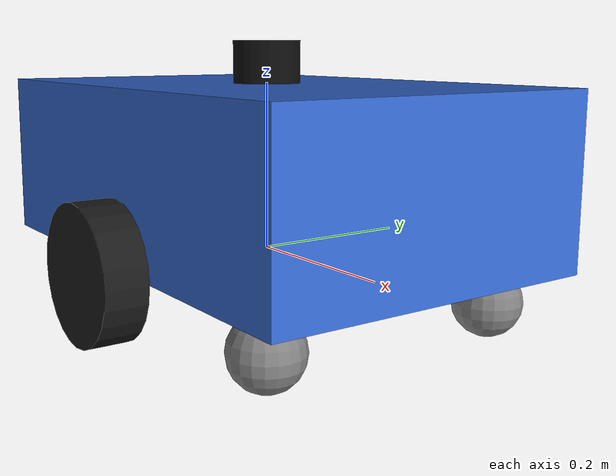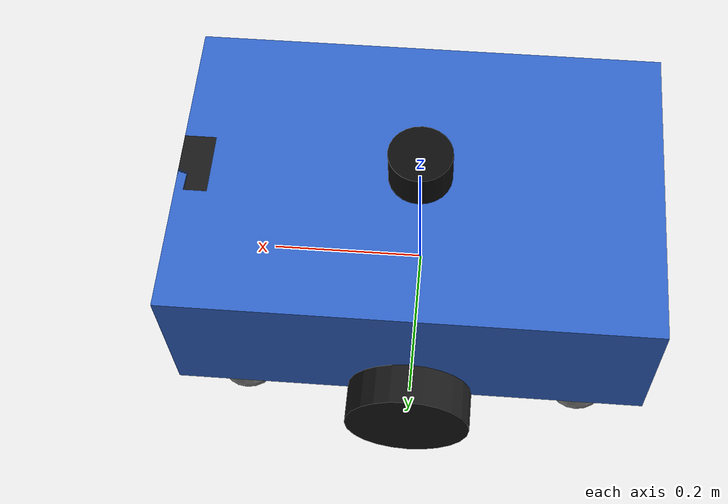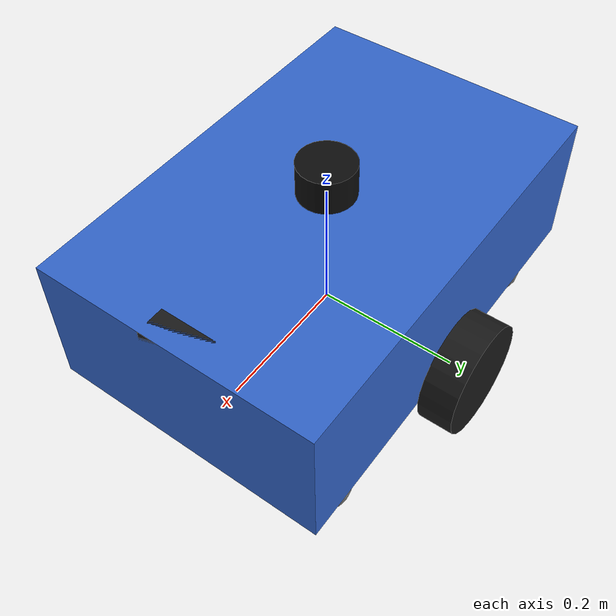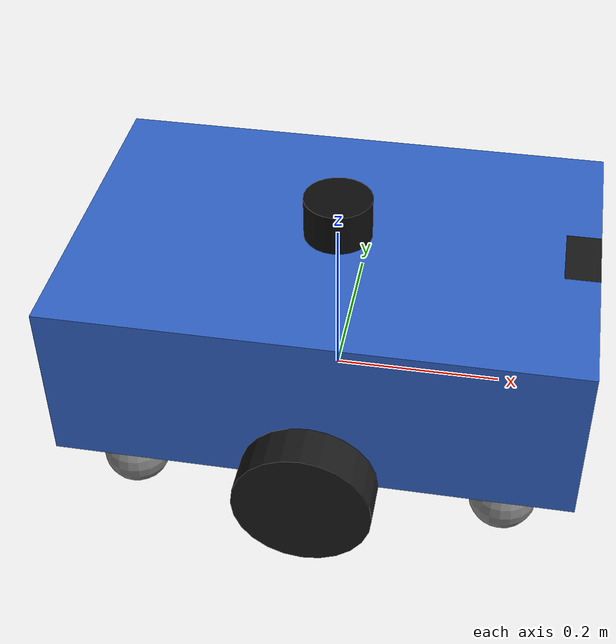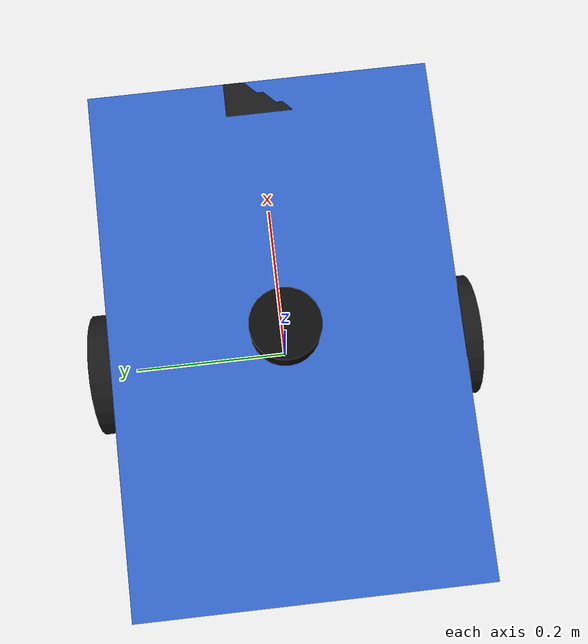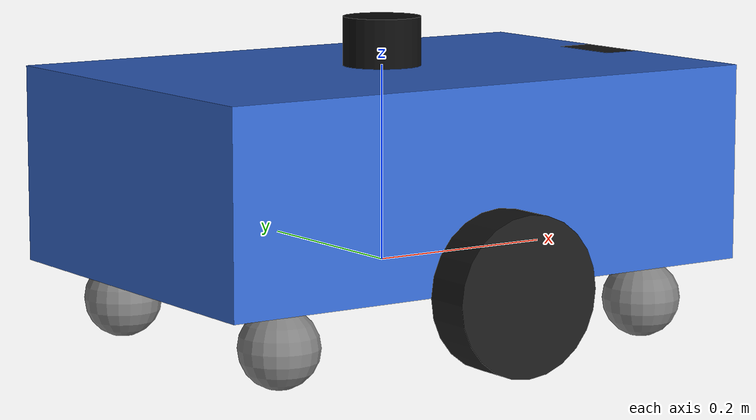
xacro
<?xml version="1.0"?>
<robot name="agv_robot" xmlns:xacro="http://www.ros.org/wiki/xacro">

  <!-- ==================== PROPERTIES ==================== -->
  <xacro:arg name="robot_name" default="robot_1"/>
  <xacro:arg name="robot_namespace" default="robot_1"/>

  <xacro:property name="robot_name"      value="$(arg robot_name)"/>
  <xacro:property name="ns"             value="$(arg robot_namespace)"/>

  <!-- Body dimensions -->
  <xacro:property name="base_length"    value="0.60"/>
  <xacro:property name="base_width"     value="0.40"/>
  <xacro:property name="base_height"    value="0.20"/>
  <xacro:property name="base_mass"      value="30.0"/>

  <!-- Wheel properties -->
  <xacro:property name="wheel_radius"   value="0.08"/>
  <xacro:property name="wheel_width"    value="0.05"/>
  <xacro:property name="wheel_mass"     value="1.5"/>
  <xacro:property name="wheel_y_offset" value="0.225"/>
  <xacro:property name="wheel_z_offset" value="0.0"/>

  <!-- Caster properties -->
  <xacro:property name="caster_radius"  value="0.04"/>
  <xacro:property name="caster_mass"    value="0.5"/>

  <!-- Sensor heights -->
  <xacro:property name="lidar_height"   value="0.22"/>
  <xacro:property name="camera_height"  value="0.18"/>
  <xacro:property name="imu_height"     value="0.12"/>

  <!-- Inertia macros -->
  <xacro:macro name="box_inertia" params="m x y z">
    <inertial>
      <mass value="${m}"/>
      <inertia ixx="${m*(y*y+z*z)/12}" ixy="0" ixz="0"
               iyy="${m*(x*x+z*z)/12}" iyz="0"
               izz="${m*(x*x+y*y)/12}"/>
    </inertial>
  </xacro:macro>

  <xacro:macro name="cylinder_inertia" params="m r h">
    <inertial>
      <mass value="${m}"/>
      <inertia ixx="${m*(3*r*r+h*h)/12}" ixy="0" ixz="0"
               iyy="${m*(3*r*r+h*h)/12}" iyz="0"
               izz="${m*r*r/2}"/>
    </inertial>
  </xacro:macro>

  <xacro:macro name="sphere_inertia" params="m r">
    <inertial>
      <mass value="${m}"/>
      <inertia ixx="${2*m*r*r/5}" ixy="0" ixz="0"
               iyy="${2*m*r*r/5}" iyz="0"
               izz="${2*m*r*r/5}"/>
    </inertial>
  </xacro:macro>

  <!-- ==================== BASE LINK ==================== -->
  <link name="${ns}/base_footprint"/>

  <joint name="${ns}/base_footprint_joint" type="fixed">
    <parent link="${ns}/base_link"/>
    <child  link="${ns}/base_footprint"/>
    <origin xyz="0 0 ${-wheel_radius}" rpy="0 0 0"/>
  </joint>

  <link name="${ns}/base_link">
    <visual>
      <origin xyz="0 0 ${base_height/2}" rpy="0 0 0"/>
      <geometry>
        <box size="${base_length} ${base_width} ${base_height}"/>
      </geometry>
      <material name="agv_blue">
        <color rgba="0.2 0.4 0.8 1.0"/>
      </material>
    </visual>
    <collision>
      <origin xyz="0 0 ${base_height/2}" rpy="0 0 0"/>
      <geometry>
        <box size="${base_length} ${base_width} ${base_height}"/>
      </geometry>
    </collision>
    <xacro:box_inertia m="${base_mass}" x="${base_length}" y="${base_width}" z="${base_height}"/>
  </link>

  <!-- ==================== DRIVE WHEELS ==================== -->
  <xacro:macro name="drive_wheel" params="prefix y_reflect">
    <link name="${ns}/${prefix}_wheel_link">
      <visual>
        <origin xyz="0 0 0" rpy="${pi/2} 0 0"/>
        <geometry>
          <cylinder radius="${wheel_radius}" length="${wheel_width}"/>
        </geometry>
        <material name="wheel_black">
          <color rgba="0.1 0.1 0.1 1.0"/>
        </material>
      </visual>
      <collision>
        <origin xyz="0 0 0" rpy="${pi/2} 0 0"/>
        <geometry>
          <cylinder radius="${wheel_radius}" length="${wheel_width}"/>
        </geometry>
      </collision>
      <xacro:cylinder_inertia m="${wheel_mass}" r="${wheel_radius}" h="${wheel_width}"/>
    </link>

    <joint name="${ns}/${prefix}_wheel_joint" type="continuous">
      <parent link="${ns}/base_link"/>
      <child  link="${ns}/${prefix}_wheel_link"/>
      <origin xyz="0 ${y_reflect * wheel_y_offset} ${wheel_z_offset}" rpy="0 0 0"/>
      <axis xyz="0 1 0"/>
      <dynamics damping="0.1" friction="0.1"/>
    </joint>
  </xacro:macro>

  <xacro:drive_wheel prefix="left"  y_reflect="1"/>
  <xacro:drive_wheel prefix="right" y_reflect="-1"/>

  <!-- ==================== CASTER WHEELS ==================== -->
  <xacro:macro name="caster_wheel" params="prefix x_pos y_pos">
    <!-- Swivel link -->
    <link name="${ns}/${prefix}_caster_swivel">
      <xacro:sphere_inertia m="0.01" r="0.01"/>
    </link>
    <joint name="${ns}/${prefix}_caster_swivel_joint" type="continuous">
      <parent link="${ns}/base_link"/>
      <child  link="${ns}/${prefix}_caster_swivel"/>
      <origin xyz="${x_pos} ${y_pos} ${-wheel_radius + caster_radius}" rpy="0 0 0"/>
      <axis xyz="0 0 1"/>
      <dynamics damping="0.01" friction="0.0"/>
    </joint>

    <!-- Caster wheel -->
    <link name="${ns}/${prefix}_caster_link">
      <visual>
        <geometry><sphere radius="${caster_radius}"/></geometry>
        <material name="caster_gray">
          <color rgba="0.5 0.5 0.5 1.0"/>
        </material>
      </visual>
      <collision>
        <geometry><sphere radius="${caster_radius}"/></geometry>
      </collision>
      <xacro:sphere_inertia m="${caster_mass}" r="${caster_radius}"/>
    </link>
    <joint name="${ns}/${prefix}_caster_joint" type="continuous">
      <parent link="${ns}/${prefix}_caster_swivel"/>
      <child  link="${ns}/${prefix}_caster_link"/>
      <origin xyz="0 0 0" rpy="0 0 0"/>
      <axis xyz="0 1 0"/>
      <dynamics damping="0.01" friction="0.0"/>
    </joint>
  </xacro:macro>

  <xacro:caster_wheel prefix="front_left"  x_pos=" 0.22" y_pos=" 0.15"/>
  <xacro:caster_wheel prefix="front_right" x_pos=" 0.22" y_pos="-0.15"/>
  <xacro:caster_wheel prefix="rear_left"   x_pos="-0.22" y_pos=" 0.15"/>
  <xacro:caster_wheel prefix="rear_right"  x_pos="-0.22" y_pos="-0.15"/>

  <!-- ==================== 2D LIDAR ==================== -->
  <link name="${ns}/lidar_link">
    <visual>
      <origin xyz="0 0 0" rpy="0 0 0"/>
      <geometry>
        <cylinder radius="0.04" length="0.06"/>
      </geometry>
      <material name="lidar_black">
        <color rgba="0.05 0.05 0.05 1.0"/>
      </material>
    </visual>
    <collision>
      <geometry>
        <cylinder radius="0.04" length="0.06"/>
      </geometry>
    </collision>
    <inertial>
      <mass value="0.3"/>
      <inertia ixx="0.001" ixy="0" ixz="0" iyy="0.001" iyz="0" izz="0.001"/>
    </inertial>
  </link>

  <joint name="${ns}/lidar_joint" type="fixed">
    <parent link="${ns}/base_link"/>
    <child  link="${ns}/lidar_link"/>
    <origin xyz="0 0 ${lidar_height}" rpy="0 0 0"/>
  </joint>

  <!-- LiDAR Gazebo plugin -->
  <gazebo reference="${ns}/lidar_link">
    <sensor name="${ns}_lidar" type="ray">
      <always_on>true</always_on>
      <visualize>false</visualize>
      <update_rate>10</update_rate>
      <ray>
        <scan>
          <horizontal>
            <samples>360</samples>
            <resolution>1</resolution>
            <min_angle>-3.14159</min_angle>
            <max_angle>3.14159</max_angle>
          </horizontal>
        </scan>
        <range>
          <min>0.15</min>
          <max>12.0</max>
          <resolution>0.01</resolution>
        </range>
        <noise>
          <type>gaussian</type>
          <mean>0.0</mean>
          <stddev>0.01</stddev>
        </noise>
      </ray>
      <plugin name="${ns}_lidar_plugin" filename="libgazebo_ros_ray_sensor.so">
        <ros>
          <namespace>${ns}</namespace>
          <remapping>~/out:=scan</remapping>
        </ros>
        <output_type>sensor_msgs/LaserScan</output_type>
        <frame_name>${ns}/lidar_link</frame_name>
      </plugin>
    </sensor>
  </gazebo>

  <!-- ==================== RGB CAMERA ==================== -->
  <link name="${ns}/camera_link">
    <visual>
      <origin xyz="0 0 0" rpy="0 0 0"/>
      <geometry>
        <box size="0.04 0.08 0.04"/>
      </geometry>
      <material name="camera_dark">
        <color rgba="0.1 0.1 0.1 1.0"/>
      </material>
    </visual>
    <collision>
      <geometry>
        <box size="0.04 0.08 0.04"/>
      </geometry>
    </collision>
    <inertial>
      <mass value="0.1"/>
      <inertia ixx="0.0001" ixy="0" ixz="0" iyy="0.0001" iyz="0" izz="0.0001"/>
    </inertial>
  </link>

  <joint name="${ns}/camera_joint" type="fixed">
    <parent link="${ns}/base_link"/>
    <child  link="${ns}/camera_link"/>
    <origin xyz="${base_length/2 - 0.02} 0 ${camera_height}" rpy="0 0 0"/>
  </joint>

  <link name="${ns}/camera_optical_link"/>
  <joint name="${ns}/camera_optical_joint" type="fixed">
    <parent link="${ns}/camera_link"/>
    <child  link="${ns}/camera_optical_link"/>
    <origin xyz="0 0 0" rpy="${-pi/2} 0 ${-pi/2}"/>
  </joint>

  <!-- Camera Gazebo plugin -->
  <gazebo reference="${ns}/camera_link">
    <sensor name="${ns}_camera" type="camera">
      <always_on>true</always_on>
      <visualize>false</visualize>
      <update_rate>30</update_rate>
      <camera>
        <horizontal_fov>1.3962634</horizontal_fov>
        <image>
          <width>640</width>
          <height>480</height>
          <format>R8G8B8</format>
        </image>
        <clip>
          <near>0.02</near>
          <far>300</far>
        </clip>
        <noise>
          <type>gaussian</type>
          <mean>0.0</mean>
          <stddev>0.007</stddev>
        </noise>
      </camera>
      <plugin name="${ns}_camera_plugin" filename="libgazebo_ros_camera.so">
        <ros>
          <namespace>${ns}</namespace>
          <remapping>image_raw:=camera/image_raw</remapping>
          <remapping>camera_info:=camera/camera_info</remapping>
        </ros>
        <camera_name>${ns}_camera</camera_name>
        <frame_name>${ns}/camera_optical_link</frame_name>
      </plugin>
    </sensor>
  </gazebo>

  <!-- ==================== IMU ==================== -->
  <link name="${ns}/imu_link">
    <visual>
      <geometry><box size="0.03 0.03 0.01"/></geometry>
      <material name="imu_green"><color rgba="0.0 0.8 0.0 1.0"/></material>
    </visual>
    <inertial>
      <mass value="0.05"/>
      <inertia ixx="0.00001" ixy="0" ixz="0" iyy="0.00001" iyz="0" izz="0.00001"/>
    </inertial>
  </link>

  <joint name="${ns}/imu_joint" type="fixed">
    <parent link="${ns}/base_link"/>
    <child  link="${ns}/imu_link"/>
    <origin xyz="0 0 ${imu_height}" rpy="0 0 0"/>
  </joint>

  <!-- IMU Gazebo plugin -->
  <gazebo reference="${ns}/imu_link">
    <sensor name="${ns}_imu" type="imu">
      <always_on>true</always_on>
      <update_rate>100</update_rate>
      <plugin name="${ns}_imu_plugin" filename="libgazebo_ros_imu_sensor.so">
        <ros>
          <namespace>${ns}</namespace>
          <remapping>~/out:=imu</remapping>
        </ros>
        <initial_orientation_as_reference>false</initial_orientation_as_reference>
        <frame_name>${ns}/imu_link</frame_name>
      </plugin>
      <imu>
        <angular_velocity>
          <x><noise type="gaussian"><mean>0</mean><stddev>0.009</stddev></noise></x>
          <y><noise type="gaussian"><mean>0</mean><stddev>0.009</stddev></noise></y>
          <z><noise type="gaussian"><mean>0</mean><stddev>0.009</stddev></noise></z>
        </angular_velocity>
        <linear_acceleration>
          <x><noise type="gaussian"><mean>0</mean><stddev>0.021</stddev></noise></x>
          <y><noise type="gaussian"><mean>0</mean><stddev>0.021</stddev></noise></y>
          <z><noise type="gaussian"><mean>0</mean><stddev>0.021</stddev></noise></z>
        </linear_acceleration>
      </imu>
    </sensor>
  </gazebo>

  <!-- ==================== DIFF DRIVE PLUGIN ==================== -->
  <gazebo>
    <plugin name="${ns}_diff_drive" filename="libgazebo_ros_diff_drive.so">
      <ros>
        <namespace>${ns}</namespace>
        <remapping>cmd_vel:=cmd_vel</remapping>
        <remapping>odom:=odom</remapping>
        <!-- Remap absolute /tf → relative tf so TF lands in /${ns}/tf
             (nav2 nodes subscribe to /${ns}/tf via their own '/tf'→'tf' remapping) -->
        <remapping>/tf:=tf</remapping>
      </ros>
      <left_joint>${ns}/left_wheel_joint</left_joint>
      <right_joint>${ns}/right_wheel_joint</right_joint>
      <wheel_separation>${2 * wheel_y_offset}</wheel_separation>
      <wheel_diameter>${2 * wheel_radius}</wheel_diameter>
      <max_wheel_torque>20.0</max_wheel_torque>
      <max_wheel_acceleration>2.0</max_wheel_acceleration>
      <publish_odom>true</publish_odom>
      <publish_odom_tf>true</publish_odom_tf>
      <publish_wheel_tf>false</publish_wheel_tf>
      <odometry_frame>${ns}/odom</odometry_frame>
      <robot_base_frame>${ns}/base_link</robot_base_frame>
    </plugin>
  </gazebo>

  <!-- Gazebo surface properties: drive wheels need high friction for traction -->
  <gazebo reference="${ns}/left_wheel_link">
    <mu1>1.0</mu1>
    <mu2>1.0</mu2>
    <kp>1000000.0</kp>
    <kd>100.0</kd>
    <minDepth>0.001</minDepth>
    <maxVel>1.0</maxVel>
  </gazebo>
  <gazebo reference="${ns}/right_wheel_link">
    <mu1>1.0</mu1>
    <mu2>1.0</mu2>
    <kp>1000000.0</kp>
    <kd>100.0</kd>
    <minDepth>0.001</minDepth>
    <maxVel>1.0</maxVel>
  </gazebo>

  <!-- Publish caster joint states so RSP can broadcast their TF frames.
       diff_drive only covers left/right wheel joints; casters are passive. -->
  <gazebo>
    <plugin name="${ns}_caster_joint_states" filename="libgazebo_ros_joint_state_publisher.so">
      <ros>
        <namespace>${ns}</namespace>
        <remapping>joint_states:=joint_states</remapping>
      </ros>
      <update_rate>50</update_rate>
      <joint_name>${ns}/front_left_caster_swivel_joint</joint_name>
      <joint_name>${ns}/front_left_caster_joint</joint_name>
      <joint_name>${ns}/front_right_caster_swivel_joint</joint_name>
      <joint_name>${ns}/front_right_caster_joint</joint_name>
      <joint_name>${ns}/rear_left_caster_swivel_joint</joint_name>
      <joint_name>${ns}/rear_left_caster_joint</joint_name>
      <joint_name>${ns}/rear_right_caster_swivel_joint</joint_name>
      <joint_name>${ns}/rear_right_caster_joint</joint_name>
      <joint_name>${ns}/left_wheel_joint</joint_name>
      <joint_name>${ns}/right_wheel_joint</joint_name>
    </plugin>
  </gazebo>

  <!-- Caster wheels: low friction so they roll/swivel freely -->
  <gazebo reference="${ns}/front_left_caster_link">
    <mu1>0.01</mu1>
    <mu2>0.01</mu2>
    <kp>1000000.0</kp>
    <kd>100.0</kd>
    <minDepth>0.001</minDepth>
    <maxVel>1.0</maxVel>
  </gazebo>
  <gazebo reference="${ns}/front_right_caster_link">
    <mu1>0.01</mu1>
    <mu2>0.01</mu2>
    <kp>1000000.0</kp>
    <kd>100.0</kd>
    <minDepth>0.001</minDepth>
    <maxVel>1.0</maxVel>
  </gazebo>
  <gazebo reference="${ns}/rear_left_caster_link">
    <mu1>0.01</mu1>
    <mu2>0.01</mu2>
    <kp>1000000.0</kp>
    <kd>100.0</kd>
    <minDepth>0.001</minDepth>
    <maxVel>1.0</maxVel>
  </gazebo>
  <gazebo reference="${ns}/rear_right_caster_link">
    <mu1>0.01</mu1>
    <mu2>0.01</mu2>
    <kp>1000000.0</kp>
    <kd>100.0</kd>
    <minDepth>0.001</minDepth>
    <maxVel>1.0</maxVel>
  </gazebo>

  <!-- Base link color in Gazebo -->
  <gazebo reference="${ns}/base_link">
    <material>Gazebo/Blue</material>
  </gazebo>

</robot>
